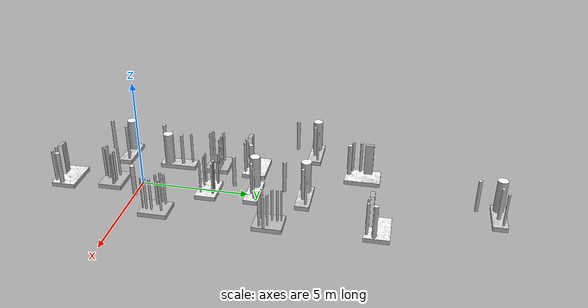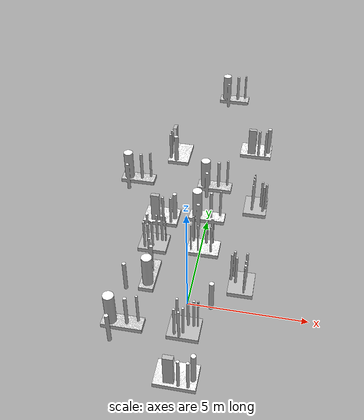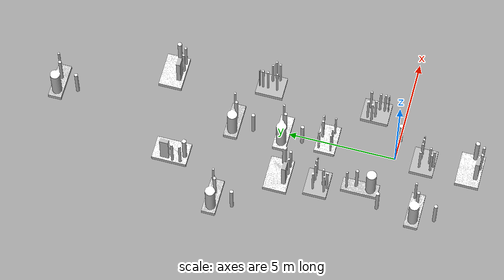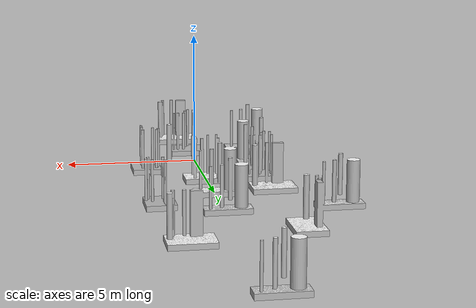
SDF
<?xml version="1.0" ?>
<sdf version="1.5">
  <model name="roblab">
    <link name="pipes">
      <pose>1 0 0 0 0 0</pose>
      <gravity>1</gravity>
      <collision name="collision">
        <geometry>
          <mesh>
            <uri>model://container/meshes/container.dae</uri>
            <scale>1 1 1</scale>
          </mesh>
        </geometry>
      </collision>
      <visual name="visual">
        <geometry>
          <mesh>
            <uri>model://container/meshes/container.dae</uri>
            <scale>1 1 1</scale>
          </mesh>
        </geometry>
        <cast_shadows>false</cast_shadows>
      </visual>
    </link>
  </model>
</sdf>
